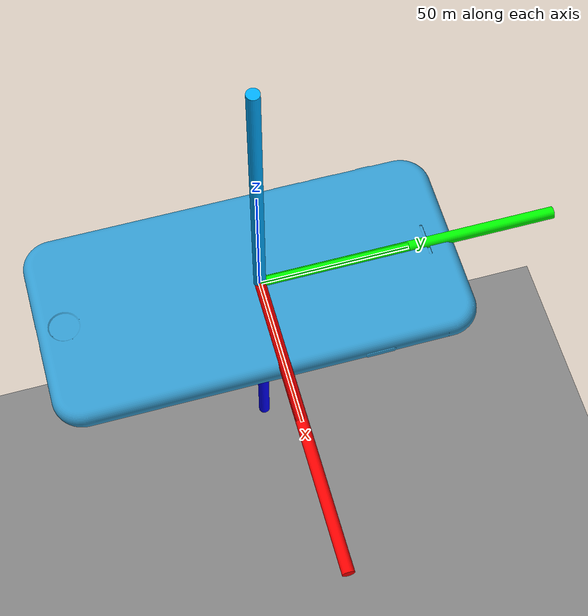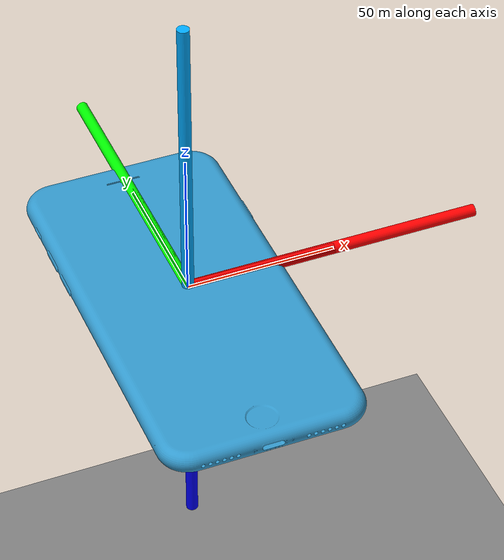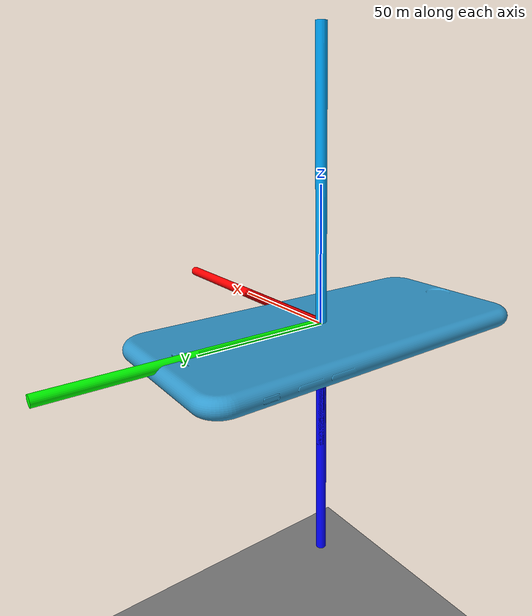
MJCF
<mujoco model="phone_model">
    <compiler angle="radian" coordinate="local" />

    <option gravity="0 0 0" />

    <asset>
        <!-- You can switch to a silly mesh we made for fun in reference to how I (caleb) destroyed a phone I hardbricked while trying to install lineage OS on it ;) -->
        <mesh name="phone_mesh" file="iphone8.stl" />
    </asset>

    <worldbody>
        <geom name="ground" type="plane" size="500 500 0.1" pos="0 0 -250" rgba="0.5 0.5 0.5 1" contype="0" conaffinity="0" />
        <!-- RGB coordinate frame at the origin -->
        <geom name="x_axis" type="cylinder" fromto="0 0 0 50 0 0" size="2" rgba="1 0 0 1" contype="0" conaffinity="0"/>
        <geom name="y_axis" type="cylinder" fromto="0 0 0 0 50 0" size="2" rgba="0 1 0 1" contype="0" conaffinity="0"/>
        <geom name="z_axis" type="cylinder" fromto="0 0 0 0 0 -50" size="2" rgba="0 0 1 1" contype="0" conaffinity="0"/>

        <!-- The actual phone body-->
        <body name="phone" pos="0 0 0">
            <joint name="free_joint" type="free"/>
            <!-- Attach the mesh as a visual and collision object -->
            <geom type="mesh" mesh="phone_mesh" rgba="0.2 0.6 0.8 1" pos="-35 -135 -208" />

            <!-- Body frame visualization-->
            <geom name="body_x_axis" type="cylinder" fromto="0 0 0 100 0 0" size="2" rgba="1 0 0 1" contype="0" conaffinity="0"/>
            <geom name="body_y_axis" type="cylinder" fromto="0 0 0 0 100 0" size="2" rgba="0 1 0 1" contype="0" conaffinity="0"/>
            <geom name="body_z_axis" type="cylinder" fromto="0 0 0 0 0 -100" size="2" rgba="0 0 1 1" contype="0" conaffinity="0"/>

            <!--- These bodies are so you can see where vectors like v_hat_a are pointing during the simulation. -->
            <body name="v_hat_a_body" pos="0 0 0">
                <joint name="v_a_hat_joint" type="ball"/>
                <geom name="v_a_hat" type="cylinder" fromto="0 0 0 0 0 100" size="2" rgba="0 .67 1 1" contype="0" conaffinity="0"/>
            </body>

            <body name="v_hat_m_body" pos="0 0 0">
                <joint name="v_m_hat_joint" type="ball"/>
                <geom name="v_m_hat" type="cylinder" fromto="0 0 0 0 0 100" size="2" rgba=".909 .658823 .30980 .729" contype="0" conaffinity="0"/>
            </body>
        </body>
    </worldbody>
</mujoco>
